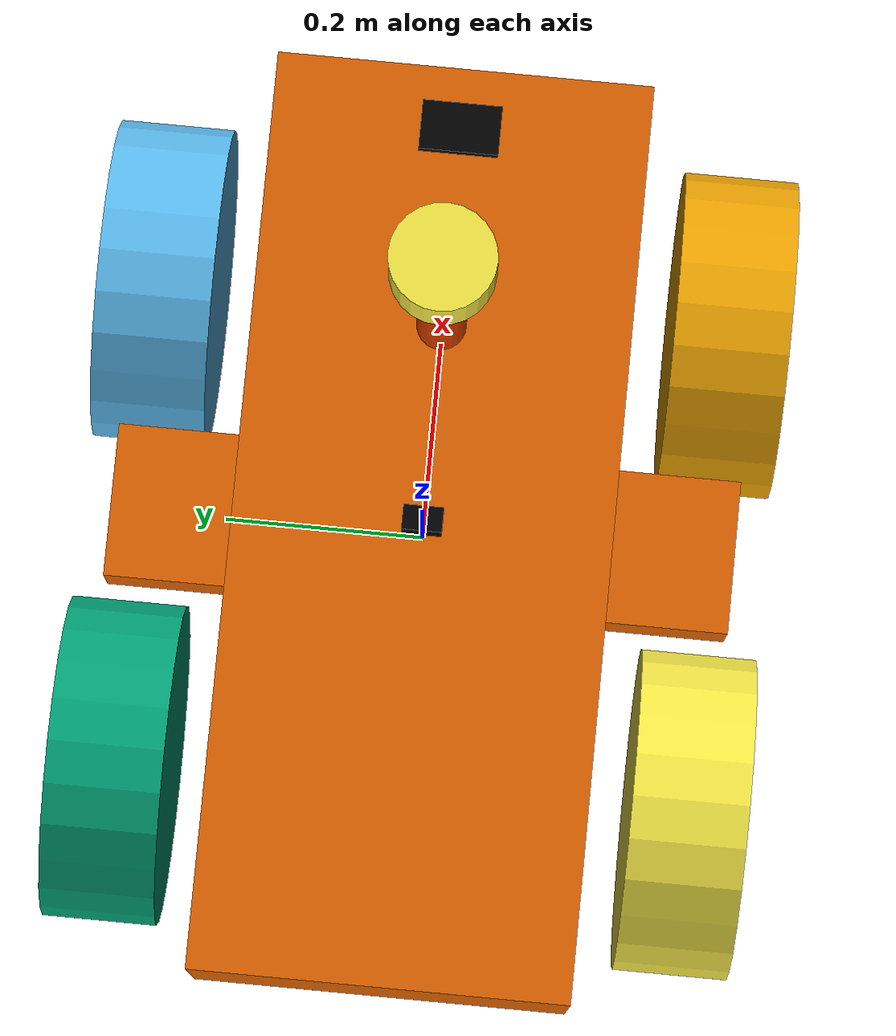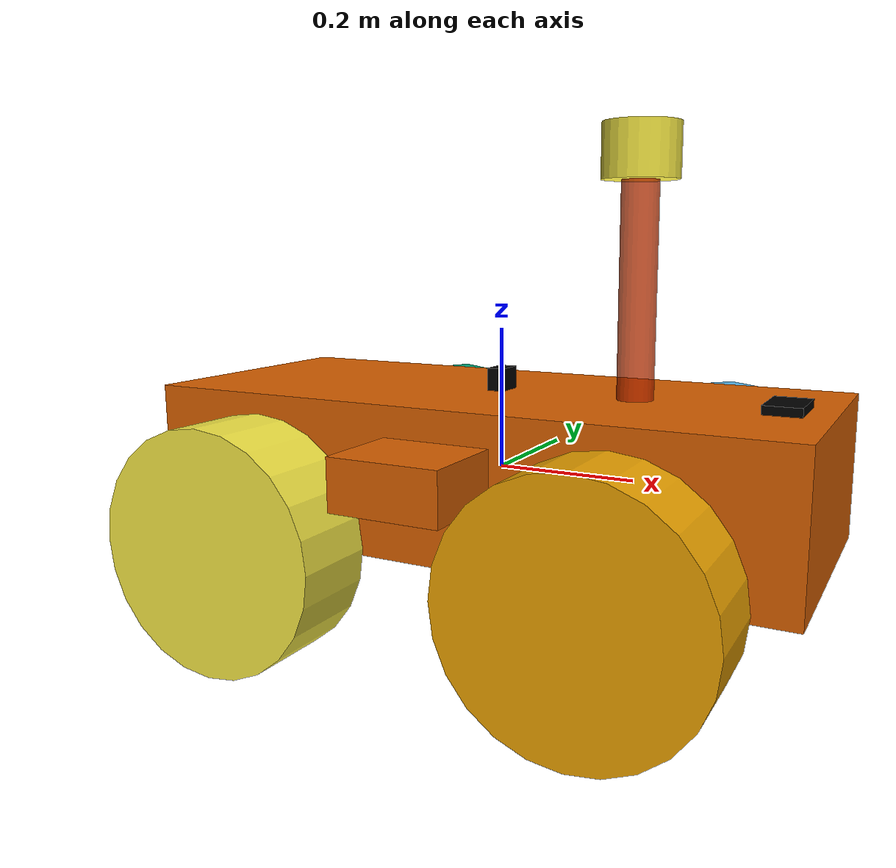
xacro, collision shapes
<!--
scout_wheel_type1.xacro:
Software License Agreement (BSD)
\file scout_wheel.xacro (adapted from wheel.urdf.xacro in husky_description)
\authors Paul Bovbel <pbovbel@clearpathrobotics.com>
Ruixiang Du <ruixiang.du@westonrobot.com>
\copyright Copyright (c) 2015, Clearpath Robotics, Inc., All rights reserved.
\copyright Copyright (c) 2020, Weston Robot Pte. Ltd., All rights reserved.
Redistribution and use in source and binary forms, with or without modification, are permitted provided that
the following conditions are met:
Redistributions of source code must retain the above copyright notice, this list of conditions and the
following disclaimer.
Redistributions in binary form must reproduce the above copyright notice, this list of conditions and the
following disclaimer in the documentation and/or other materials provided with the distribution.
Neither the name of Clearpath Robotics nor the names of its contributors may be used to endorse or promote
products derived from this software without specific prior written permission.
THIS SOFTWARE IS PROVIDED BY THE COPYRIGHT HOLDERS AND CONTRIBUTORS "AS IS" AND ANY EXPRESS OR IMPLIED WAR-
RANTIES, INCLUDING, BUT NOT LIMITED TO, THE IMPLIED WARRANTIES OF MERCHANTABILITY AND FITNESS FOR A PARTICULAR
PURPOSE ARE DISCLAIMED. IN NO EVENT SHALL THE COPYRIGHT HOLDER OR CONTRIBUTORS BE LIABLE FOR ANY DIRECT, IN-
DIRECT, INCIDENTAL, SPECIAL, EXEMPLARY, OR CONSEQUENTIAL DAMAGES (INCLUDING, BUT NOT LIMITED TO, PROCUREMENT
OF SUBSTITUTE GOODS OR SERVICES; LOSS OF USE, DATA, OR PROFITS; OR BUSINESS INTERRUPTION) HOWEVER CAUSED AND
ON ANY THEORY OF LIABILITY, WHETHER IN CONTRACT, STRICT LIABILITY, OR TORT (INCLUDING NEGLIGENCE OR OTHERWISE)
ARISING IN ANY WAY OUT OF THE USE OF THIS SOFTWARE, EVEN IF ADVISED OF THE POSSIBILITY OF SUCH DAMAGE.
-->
<?xml version="1.0"?>

<robot name="scout_v2"  xmlns:xacro="http://ros.org/wiki/xacro">

    <xacro:arg name="robot_namespace" default="/" />

  <xacro:arg name="gpu" default="true"/>
  <xacro:property name="gpu" value="$(arg gpu)" />
  <xacro:arg name="organize_cloud" default="false"/>
  <xacro:property name="organize_cloud" value="$(arg organize_cloud)" />

    <!-- 属性封装 -->
    <xacro:property name="M_PI" value="3.14159"/>

    <xacro:property name="base_x_size" value="0.9250000" />
    <xacro:property name="base_y_size" value="0.380000" />
    <xacro:property name="base_z_size" value="0.210000" />

    <xacro:property name="wheelbase" value="0.498" />
    <xacro:property name="track" value="0.58306" />   <!-- track————车轮间距 -->
    <xacro:property name="wheel_vertical_offset" value="-0.0702" />

    <xacro:property name="wheel_length" value="1.1653e-01" />
    <xacro:property name="wheel_radius" value="1.6459e-01" />

    <material name="black">
        <color rgba="0.0 0.0 0.0 1.0" />
    </material>

    <!-- 包含其他xacro文件 -->
    <xacro:include filename="$(find scout_gazebo)/urdf/scout_wheel_type1.xacro" />
    <xacro:include filename="$(find scout_gazebo)/urdf/scout_wheel_type2.xacro" />

    <xacro:include filename="$(find scout_gazebo)/urdf/inertial.xacro" />
    <xacro:include filename="$(find scout_gazebo)/urdf/IMU.xacro" />
    <xacro:include filename="$(find scout_gazebo)/urdf/VLP-16.urdf.xacro"/>

    <xacro:include filename="$(find scout_gazebo)/urdf/camera.xacro" />
    <xacro:include filename="$(find scout_gazebo)/urdf/move.xacro" />

  <xacro:VLP-16 out_parent="baselink" laser_name="velodyne" topic="/velodyne_points" organize_cloud="${organize_cloud}" hz="10" samples="1024" gpu="${gpu}">
    <origin xyz="0.2 0 0.40" rpy="0 0 0" /> -->
  </xacro:VLP-16>

  <gazebo>
              <plugin name="gps" filename="libhector_gazebo_ros_gps.so">
                  <updateRate>10.0</updateRate>
                  <topicName>sensor_msgs/NavSatFix</topicName>
                  <gaussianNoise>0.01 0.01 0.1</gaussianNoise>
                  <offset>0 0 0</offset>
                  <velocityGaussianNoise>0 0 0</velocityGaussianNoise>
                  <frameId>baselink</frameId>
              </plugin>
  </gazebo>

    <!-- Base link  底盘 -->
    <link name="baselink">
        <visual>
            <origin xyz="0 0 0" rpy="0 0 0" />
            <geometry>
                <mesh filename="package://scout_gazebo/meshes/base_link.dae" />
            </geometry>
        </visual>
        <collision>
            <origin xyz="0 0 0.008" rpy="0 0 0" />
            <geometry>
                <box size="${base_x_size} ${base_y_size} ${base_z_size}"/>
            </geometry>
        </collision>
        <collision>
            <origin xyz="0 0 ${base_z_size/6}" rpy="0 0 0" />
            <geometry>
                <box size="${base_x_size/6} ${base_y_size*1.65} ${base_z_size/3}"/>
            </geometry>
        </collision>
    </link>

    <link name="base_footprint"/>

    <!-- 关节 -->
    <joint name="base_footprint_joint" type="fixed">
        <origin xyz="0 0 ${wheel_vertical_offset - wheel_radius}" rpy="0 0 0" />
        <parent link="baselink" />
        <child link="base_footprint" />
    </joint>

    <link name="inertial_link">
        <inertial>
            <mass value="5" />
            <origin xyz="0.0 0.0 0.0" />
            <inertia ixx="2.288641" ixy="0" ixz="0" iyy="5.103976" iyz="0" izz="3.431465" />
        </inertial>
    </link>

    <joint name="inertial_joint" type="fixed">
        <origin xyz="0 0 0" rpy="0 0 0" />
        <parent link="baselink" />
        <child link="inertial_link" />
    </joint>

    <!-- 宏  Scout wheel macros -->
    <!-- motor 1 and 2 (left side) are mechanically installed in a reversed direction -->
      <xacro:scout_wheel_type1 wheel_prefix="front_right">
        <origin xyz="${wheelbase/2} ${-track/2} ${wheel_vertical_offset}" rpy="3.14 0 0" />
    </xacro:scout_wheel_type1>
    <xacro:scout_wheel_type2 wheel_prefix="front_left">
        <origin xyz="${wheelbase/2} ${track/2} ${wheel_vertical_offset}" rpy="0 0 0" />
    </xacro:scout_wheel_type2>
    <xacro:scout_wheel_type1 wheel_prefix="rear_left">
        <origin xyz="${-wheelbase/2} ${track/2} ${wheel_vertical_offset}" rpy="0 0 0" />
    </xacro:scout_wheel_type1>
    <xacro:scout_wheel_type2 wheel_prefix="rear_right">
        <origin xyz="${-wheelbase/2} ${-track/2} ${wheel_vertical_offset}" rpy="3.14 0 0" />
    </xacro:scout_wheel_type2>

</robot>

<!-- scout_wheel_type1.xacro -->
<robot xmlns:xacro="http://ros.org/wiki/xacro" name="scout_wheel">

    <xacro:macro name="scout_wheel_type1" params="wheel_prefix *joint_pose">
        <link name="${wheel_prefix}_wheel_link">
            <inertial>
                <mass value="10" />
                <origin xyz="0 0 0" />
                <inertia ixx="0.7171" ixy="0" ixz="0" iyy="0.1361" iyz="0" izz="0.7171" />
            </inertial>
            <visual>
                <origin xyz="0 0 0" rpy="0 0 0" />
                <geometry>
                    <mesh filename="package://scout_gazebo/meshes/wheel_type1.dae" />
                </geometry>
            </visual>
            <collision>
                <origin xyz="0 0 0" rpy="${M_PI/2} 0 0" />
                <geometry>
                    <cylinder length="${wheel_length}" radius="${wheel_radius}" />
                </geometry>
            </collision>
        </link>

        <joint name="${wheel_prefix}_wheel" type="continuous">
            <parent link="baselink"/>
            <child link="${wheel_prefix}_wheel_link"/>
            <xacro:insert_block name="joint_pose"/>
            <axis xyz="0 -1 0" rpy="0 0 0" />
        </joint>
    </xacro:macro>

</robot>

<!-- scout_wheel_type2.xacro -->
<robot xmlns:xacro="http://ros.org/wiki/xacro" name="scout_wheel">

    <xacro:macro name="scout_wheel_type2" params="wheel_prefix *joint_pose">
        <link name="${wheel_prefix}_wheel_link">
            <inertial>
                <mass value="10" />
                <origin xyz="0 0 0" />
                <inertia ixx="0.7171" ixy="0" ixz="0" iyy="0.1361" iyz="0" izz="0.7171" />
            </inertial>
            <visual>
                <origin xyz="0 0 0" rpy="0 0 0" />
                <geometry>
                    <mesh filename="package://scout_gazebo/meshes/wheel_type2.dae" />
                </geometry>
            </visual>
            <collision>
                <origin xyz="0 0 0" rpy="${M_PI/2} 0 0" />
                <geometry>
                    <cylinder length="${wheel_length}" radius="${wheel_radius}" />
                </geometry>
            </collision>
        </link>

        <joint name="${wheel_prefix}_wheel" type="continuous">
            <parent link="baselink"/>
            <child link="${wheel_prefix}_wheel_link"/>
            <xacro:insert_block name="joint_pose"/>
            <axis xyz="0 -1 0" rpy="0 0 0" />
        </joint>
    </xacro:macro>

</robot>

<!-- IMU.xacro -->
<!-- 摄像头相关的 xacro 文件 -->
<robot name="my_imu" xmlns:xacro="http://wiki.ros.org/xacro">
    <!-- imu属性 -->
    <xacro:property name="imu_length" value="0.025" /> <!--imu长度(x) -->
    <xacro:property name="imu_width" value="0.04" /> <!-- imu宽度(y) -->
    <xacro:property name="imu_height" value="0.04" /> <!--imu高度(z) -->
    <xacro:property name="imu_x" value="0.0" /> <!-- imu安装的x坐标 -->
    <xacro:property name="imu_y" value="0.0" /> <!-- imu安装的y坐标 -->
    <xacro:property name="imu_z" value="${base_z_size / 2 + imu_height / 2}" /> <!-- imu安装的z坐标:底盘高度 / 2 + imu高度 / 2  -->
    <xacro:property name="imu_m" value="0.01" /> <!--imu质量 -->

    <!-- imu关节以及link -->
    <link name="imu">
        <visual>
            <geometry>
                <box size="${imu_length} ${imu_width} ${imu_height}" />
            </geometry>
            <origin xyz="0.0 0.0 0.0" rpy="0.0 0.0 0.0" />
            <material name="black" />
        </visual>
        <collision>
            <geometry>
                <box size="${imu_length} ${imu_width} ${imu_height}" />
            </geometry>
            <origin xyz="0.0 0.0 0.0" rpy="0.0 0.0 0.0" />
        </collision>
        <xacro:Box_inertial_matrix m="${imu_m}" l="${imu_length}" w="${imu_width}" h="${imu_height}" />
    </link>

    <joint name="imu2baselink" type="fixed">
        <parent link="baselink" />
        <child link="imu" />
        <origin xyz="${imu_x} ${imu_y} ${imu_z}" />
    </joint>

    <gazebo reference="imu"><!--gazebo中颜色显示 -->
        <material>Gazebo/Red</material>
    </gazebo>

	<!-- gazebo imu插件配置 -->
    <gazebo reference="imu">
        <gravity>true</gravity>
            <sensor name="imu_sensor" type="imu">
            <always_on>true</always_on>
            <update_rate>400</update_rate>
            <visualize>true</visualize>
            <topic>__default_topic__</topic>
            <plugin filename="libgazebo_ros_imu_sensor.so" name="imu_plugin">
                <topicName>/imu/data</topicName>
                <bodyName>imu</bodyName>
                <updateRateHZ>400.0</updateRateHZ>
                <gaussianNoise>0.0</gaussianNoise>
                <xyzOffset>0 0 0</xyzOffset>
                <rpyOffset>0 0 0</rpyOffset>
                <initialOrientationAsReference>true</initialOrientationAsReference>
                <frameName>imu_link</frameName>
            </plugin>
            <pose>0 0 0 0 0 0</pose>
            </sensor>
    </gazebo>
</robot>

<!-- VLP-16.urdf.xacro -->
<robot xmlns:xacro="http://www.ros.org/wiki/xacro" name="VLP-16">
  <xacro:property name="M_PI" value="3.1415926535897931" />
  <xacro:macro name="VLP-16" params="*origin
    out_parent:=baselink
    laser_name:=velodyne
    topic:=/velodyne_points
    organize_cloud:=false
    hz:=10
    lasers:=16
    samples:=1875
    collision_range:=0.3
    min_range:=0.9
    max_range:=130.0
    noise:=0.008
    min_angle:=-${M_PI}
    max_angle:=${M_PI}
    gpu:=false">

    <!-- 雷达、支架属性 -->
    <xacro:property name="support_length" value="0.30" /> <!-- 支架长度 -->
    <xacro:property name="support_radius" value="0.025" /> <!-- 支架半径 -->
    <xacro:property name="support_x_size" value="0.2" /> <!-- 支架安装的x坐标 -->
    <xacro:property name="support_y_size" value="0.0" /> <!-- 支架安装的y坐标 -->
    <xacro:property name="support_z_size" value="0.255" /> <!-- 支架安装的z坐标:底盘高度 / 2 + 支架高度 / 2  -->
    <xacro:property name="support_m" value="0.02" /> <!-- 支架质量 -->

    <xacro:property name="laser_length" value="0.0717" /> <!-- laser长度 -->
    <xacro:property name="laser_radius" value="0.0516" /> <!-- laser半径 -->
    <xacro:property name="laser_z_size" value="0.255" /> <!-- 支架安装的z坐标:底盘高度 / 2 + 支架高度 / 2  -->
    <xacro:property name="laser_m" value="0.01" /> <!-- laser质量 -->

    <!-- 雷达支架 -->
    <link name="support">
        <visual>
            <geometry>
                <cylinder radius="${support_radius}" length="${support_length}" />
            </geometry>
            <origin xyz="0.0 0.0 0.0" rpy="0.0 0.0 0.0" />
            <material name="red">
                <color rgba="0.8 0.2 0.0 0.8" />
            </material>
        </visual>
        <collision>
            <geometry>
                <cylinder radius="${support_radius}" length="${support_length}" />
            </geometry>
            <origin xyz="0.0 0.0 0.0" rpy="0.0 0.0 0.0" />
        </collision>
        <xacro:cylinder_inertial_matrix m="${support_m}" r="${support_radius}" h="${support_length}" />
    </link>

    <joint name="support2baselink" type="fixed">
        <parent link="${out_parent}" />
        <child link="support" />
        <origin xyz="${support_x_size} ${support_y_size} ${support_z_size}" />
    </joint>

    <gazebo reference="support">
        <material>Gazebo/White</material>
    </gazebo>

  <!-- 雷达关节以及link -->
    <joint name="${laser_name}_base_mount_joint" type="fixed">
        <xacro:insert_block name="origin" />
        <parent link="${out_parent}"/>
        <child link="${laser_name}_baselink"/>
    </joint>

    <link name="${laser_name}_baselink">
        <inertial>
            <mass value="0.83"/>
            <origin xyz="0 0 0.03585"/>
            <inertia ixx="${(0.83 * (3.0*0.0516*0.0516 + 0.0717*0.0717)) / 12.0}" ixy="0" ixz="0"
                    iyy="${(0.83 * (3.0*0.0516*0.0516 + 0.0717*0.0717)) / 12.0}" iyz="0"
                    izz="${0.5 * 0.83 * (0.0516*0.0516)}"/>
            <inertia ixx="${laser_m*(3*laser_radius*laser_radius+laser_length*laser_length)/12}" ixy = "0" ixz = "0"
                    iyy="${laser_m*(3*laser_radius*laser_radius+laser_length*laser_length)/12}" iyz = "0"
                    izz="${laser_m*laser_radius*laser_radius/2}" />
        </inertial>
      <visual>
        <geometry>
            <mesh filename="package://scout_gazebo/meshes/VLP16_base_1.dae" />
        </geometry>
      </visual>
      <visual>
        <geometry>
            <mesh filename="package://scout_gazebo/meshes/VLP16_base_2.dae" />
        </geometry>
      </visual>
      <collision>
        <origin rpy="0 0 0" xyz="0 0 0.03585"/>
        <geometry>
            <cylinder radius="0.0516" length="0.0717"/>
        </geometry>
      </collision>
    </link>

    <joint name="${laser_name}_base_scan_joint" type="fixed" >
        <origin xyz="0 0 0.0377" rpy="0 0 0" />
        <parent link="${laser_name}_baselink" />
        <child link="${laser_name}"/>
    </joint>

    <link name="${laser_name}">
        <inertial>
            <mass value="0.01"/>
            <origin xyz="0 0 0"/>
            <inertia ixx="1e-7" ixy="0" ixz="0" iyy="1e-7" iyz="0" izz="1e-7"/>
        </inertial>
        <visual>
            <origin xyz="0 0 -0.0377" />
            <geometry>
                <mesh filename="package://scout_gazebo/meshes/VLP16_scan.dae" />
            </geometry>
        </visual>
    </link>

    <!-- Gazebo requires the velodyne_gazebo_plugins package -->
    <gazebo reference="${laser_name}">
        <xacro:if value="${gpu}">
            <sensor type="gpu_ray" name="${laser_name}-VLP16">
            <pose>0 0 0 0 0 0</pose>
            <visualize>false</visualize>
            <update_rate>${hz}</update_rate>
                <ray>
                    <scan>
                    <horizontal>
                        <samples>${samples}</samples>
                        <resolution>1</resolution>
                        <min_angle>${min_angle}</min_angle>
                        <max_angle>${max_angle}</max_angle>
                    </horizontal>
                    <vertical>
                        <samples>${lasers}</samples>
                        <resolution>1</resolution>
                        <min_angle>-${15.0*M_PI/180.0}</min_angle>
                        <max_angle> ${15.0*M_PI/180.0}</max_angle>
                    </vertical>
                    </scan>
                    <range>
                    <min>${collision_range}</min>
                    <max>${max_range+1}</max>
                    <resolution>0.001</resolution>
                    </range>
                    <noise>
                    <type>gaussian</type>
                    <mean>0.0</mean>
                    <stddev>0.0</stddev>
                    </noise>
                </ray>
                <plugin name="gazebo_ros_laser_controller" filename="libgazebo_ros_velodyne_gpu_laser.so">
                    <topicName>${topic}</topicName>
                    <frameName>${laser_name}</frameName>
                    <organize_cloud>${organize_cloud}</organize_cloud>
                    <min_range>${min_range}</min_range>
                    <max_range>${max_range}</max_range>
                    <gaussianNoise>${noise}</gaussianNoise>
                </plugin>
            </sensor>
        </xacro:if>
      <xacro:unless value="${gpu}">
        <sensor type="ray" name="${laser_name}-VLP16">
            <pose>0 0 0 0 0 0</pose>
            <visualize>false</visualize>
            <update_rate>${hz}</update_rate>
            <ray>
                <scan>
                    <horizontal>
                        <samples>${samples}</samples>
                        <resolution>1</resolution>
                        <min_angle>${min_angle}</min_angle>
                        <max_angle>${max_angle}</max_angle>
                    </horizontal>
                    <vertical>
                        <samples>${lasers}</samples>
                        <resolution>1</resolution>
                        <min_angle>-${15.0*M_PI/180.0}</min_angle>
                        <max_angle> ${15.0*M_PI/180.0}</max_angle>
                    </vertical>
                </scan>
                <range>
                    <min>${collision_range}</min>
                    <max>${max_range+1}</max>
                    <resolution>0.001</resolution>
                </range>
                <noise>
                    <type>gaussian</type>
                    <mean>0.0</mean>
                    <stddev>0.0</stddev>
                </noise>
            </ray>
            <plugin name="gazebo_ros_laser_controller" filename="libgazebo_ros_velodyne_laser.so">
                <topicName>${topic}</topicName>
                <frameName>${laser_name}</frameName>
                <organize_cloud>${organize_cloud}</organize_cloud>
                <min_range>${min_range}</min_range>
                <max_range>${max_range}</max_range>
                <gaussianNoise>${noise}</gaussianNoise>
            </plugin>
        </sensor>
      </xacro:unless>
    </gazebo>

  </xacro:macro>
</robot>

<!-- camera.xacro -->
<!-- 摄像头相关的 xacro 文件 -->
<robot name="my_camera" xmlns:xacro="http://wiki.ros.org/xacro">
    <!-- 摄像头属性 -->
    <xacro:property name="camera_length" value="0.05" /> <!-- 摄像头长度(x) -->
    <xacro:property name="camera_width" value="0.08" /> <!-- 摄像头宽度(y) -->
    <xacro:property name="camera_height" value="0.02" /> <!-- 摄像头高度(z) -->
    <xacro:property name="camera_x" value="0.4" /> <!-- 摄像头安装的x坐标 -->
    <xacro:property name="camera_y" value="0.0" /> <!-- 摄像头安装的y坐标 -->
    <xacro:property name="camera_z" value="${base_z_size / 2 + camera_height / 2}" /> <!-- 摄像头安装的z坐标:底盘高度 / 2 + 摄像头高度 / 2  -->
    <xacro:property name="camera_m" value="0.01" /> <!-- 摄像头质量 -->

    <!-- 摄像头关节以及link -->
    <link name="camera">
        <visual>
            <geometry>
                <box size="${camera_length} ${camera_width} ${camera_height}" />
            </geometry>
            <origin xyz="0.0 0.0 0.0" rpy="0.0 0.0 0.0" />
            <material name="black" />
        </visual>
        <collision>
            <geometry>
                <box size="${camera_length} ${camera_width} ${camera_height}" />
            </geometry>
            <origin xyz="0.0 0.0 0.0" rpy="0.0 0.0 0.0" />
        </collision>
        <xacro:Box_inertial_matrix m="${camera_m}" l="${camera_length}" w="${camera_width}" h="${camera_height}" />
    </link>

    <joint name="camera2baselink" type="fixed">
        <parent link="baselink" />
        <child link="camera" />
        <origin xyz="${camera_x} ${camera_y} ${camera_z}" />
    </joint>

    <gazebo reference="camera">
        <material>Gazebo/Black</material>
    </gazebo>

	<!-- gazebo相机插件配置 -->
    <gazebo reference="camera">
        <sensor type="multicamera" name="camera_node">
            <update_rate>20.0</update_rate> <!-- 更新频率 -->
          <camera name="left">
          <pose>0 0 0 0 0 0</pose>
          <horizontal_fov>1.047</horizontal_fov>
          <image>
            <width>640</width>
            <height>480</height>
          </image>
          <clip>
            <near>0.1</near>
            <far>100</far>
          </clip>
        </camera>
        <camera name="right">
          <pose>0 -0.07 0 0 0 0</pose>
          <horizontal_fov>1.047</horizontal_fov>
          <image>
            <width>640</width>
            <height>480</height>
          </image>
          <clip>
            <near>0.1</near>
            <far>100</far>
          </clip>
        </camera>

            <plugin name="gazebo_camera" filename="libgazebo_ros_multicamera.so">
                <alwaysOn>true</alwaysOn>
                <updateRate>0.0</updateRate>
                <cameraName>/camera</cameraName>
                <imageTopicName>image_raw</imageTopicName>
                <cameraInfoTopicName>camera_info</cameraInfoTopicName>
                <frameName>camera</frameName>
                <baseline>0.10</baseline>
                <distortion_k1>0.0</distortion_k1>
                <distortion_k2>0.0</distortion_k2>
                <distortion_k3>0.0</distortion_k3>
                <distortion_t1>0.0</distortion_t1>
                <distortion_t2>0.0</distortion_t2>
            </plugin>
        </sensor>
    </gazebo>
</robot>
